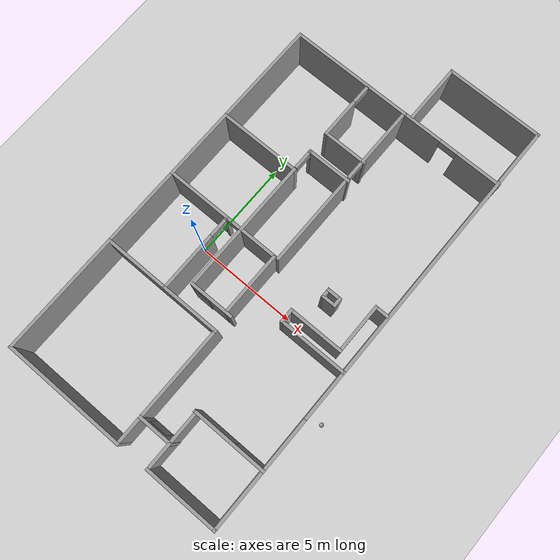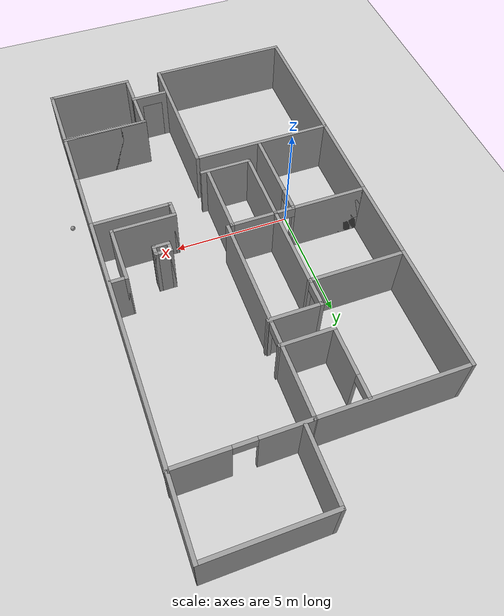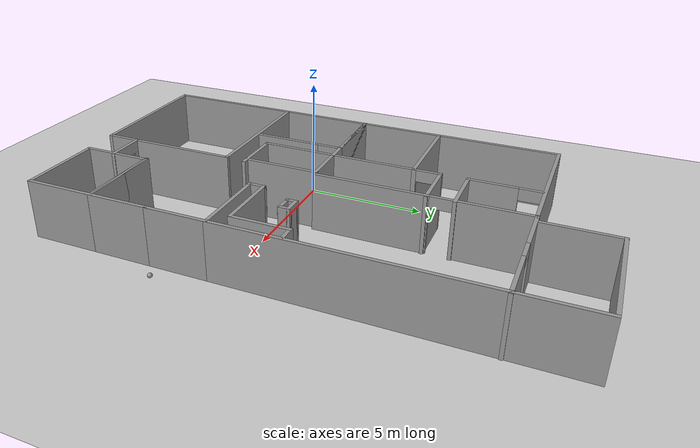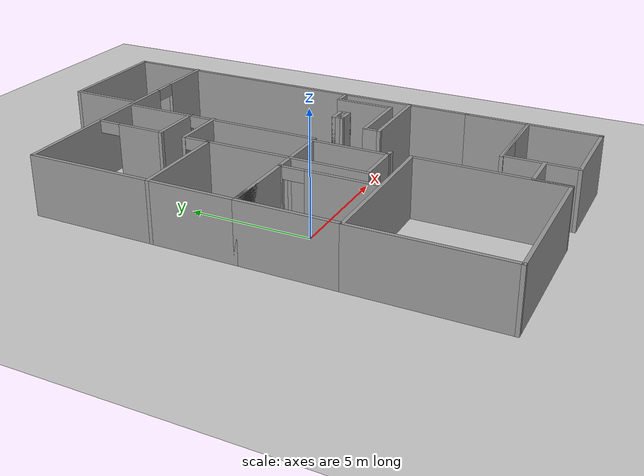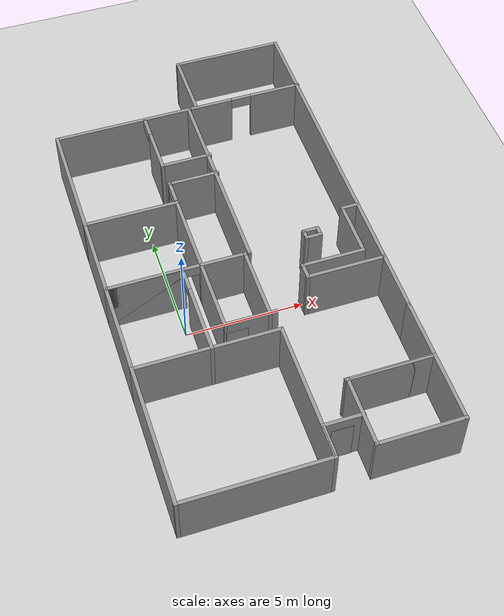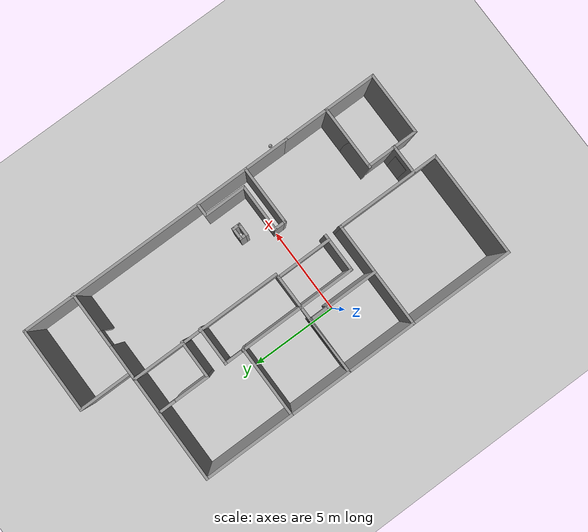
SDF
<sdf version="1.6">
 <world name="default">
  <model name="ground_plane">
   <static>1</static>
   <link name="link">
    <collision name="collision">
     <geometry><plane><normal>0 0 1</normal><size>100 100</size></plane></geometry>
     <surface>
      <contact><collide_bitmask>65535</collide_bitmask></contact>
      <friction><ode><mu>100</mu><mu2>50</mu2></ode></friction>
     </surface>
    </collision>
    <visual name="visual">
     <cast_shadows>0</cast_shadows>
     <geometry><plane><normal>0 0 1</normal><size>100 100</size></plane></geometry>
     <material>
      <script><uri>file://media/materials/scripts/gazebo.material</uri><name>Gazebo/Grey</name></script>
     </material>
    </visual>
   </link>
  </model>
  <model name="Model_House">
   <pose>2.76845 2.28145 0 0 -0 0</pose>
   <link name="Door_0">
    <collision name="Door_0_Collision">
     <geometry><box><size>0.9 0.17 2</size></box></geometry>
     <pose>0 0 1 0 -0 0</pose>
    </collision>
    <visual name="Door_0_Visual">
     <pose>0 0 1 0 -0 0</pose>
     <geometry><box><size>0.9 0.17 2</size></box></geometry>
     <material>
      <script><uri>file://media/materials/scripts/gazebo.material</uri><name>Gazebo/Grey</name></script>
     </material>
    </visual>
    <pose>1.18113 -9.39203 0 0 -0 0</pose>
   </link>
   <link name="Door_5">
    <collision name="Door_5_Collision">
     <geometry><box><size>0.9 0.17 2</size></box></geometry>
     <pose>0 0 1 0 -0 0</pose>
    </collision>
    <visual name="Door_5_Visual">
     <pose>0 0 1 0 -0 0</pose>
     <geometry><box><size>0.9 0.17 2</size></box></geometry>
     <material>
      <script><uri>file://media/materials/scripts/gazebo.material</uri><name>Gazebo/Grey</name></script>
     </material>
    </visual>
    <pose>-1.13265 -3.99754 0 0 -0 0</pose>
   </link>
   <link name="Wall_0">
    <collision name="Wall_0_Collision">
     <geometry><box><size>3.683 0.15 2.5</size></box></geometry>
     <pose>0 0 1.25 0 -0 0</pose>
    </collision>
    <visual name="Wall_0_Visual">
     <pose>0 0 1.25 0 -0 0</pose>
     <geometry><box><size>3.683 0.15 2.5</size></box></geometry>
     <material>
      <script><uri>file://media/materials/scripts/gazebo.material</uri><name>Gazebo/Grey</name></script>
      <ambient>1 1 1 1</ambient>
     </material>
     <meta><layer>0</layer></meta>
    </visual>
    <pose>3.75781 -10.694 0 0 -0 0</pose>
   </link>
   <link name="Wall_103">
    <collision name="Wall_103_Collision">
     <geometry><box><size>10.75 0.15 2.5</size></box></geometry>
     <pose>0 0 1.25 0 -0 0</pose>
    </collision>
    <visual name="Wall_103_Visual">
     <pose>0 0 1.25 0 -0 0</pose>
     <geometry><box><size>10.75 0.15 2.5</size></box></geometry>
     <material>
      <script><uri>file://media/materials/scripts/gazebo.material</uri><name>Gazebo/Grey</name></script>
      <ambient>1 1 1 1</ambient>
     </material>
     <meta><layer>0</layer></meta>
    </visual>
    <pose>5.52431 2.53801 0 0 -0 1.5708</pose>
   </link>
   <link name="Wall_115">
    <collision name="Wall_115_Collision">
     <geometry><box><size>0.75 0.15 2.5</size></box></geometry>
     <pose>0 0 1.25 0 -0 0</pose>
    </collision>
    <visual name="Wall_115_Visual">
     <pose>0 0 1.25 0 -0 0</pose>
     <geometry><box><size>0.75 0.15 2.5</size></box></geometry>
     <material>
      <script><uri>file://media/materials/scripts/gazebo.material</uri><name>Gazebo/Grey</name></script>
      <ambient>1 1 1 1</ambient>
     </material>
     <meta><layer>0</layer></meta>
    </visual>
    <pose>2.24531 -2.46199 0 0 -0 1.5708</pose>
   </link>
   <link name="Wall_116">
    <collision name="Wall_116_Collision">
     <geometry><box><size>2.75 0.15 2.5</size></box></geometry>
     <pose>0 0 1.25 0 -0 0</pose>
    </collision>
    <visual name="Wall_116_Visual">
     <pose>0 0 1.25 0 -0 0</pose>
     <geometry><box><size>2.75 0.15 2.5</size></box></geometry>
     <material>
      <script><uri>file://media/materials/scripts/gazebo.material</uri><name>Gazebo/Grey</name></script>
      <ambient>1 1 1 1</ambient>
     </material>
     <meta><layer>0</layer></meta>
    </visual>
    <pose>3.54531 -2.16199 0 0 -0 0</pose>
   </link>
   <link name="Wall_117">
    <collision name="Wall_117_Collision">
     <geometry><box><size>2.5 0.15 2.5</size></box></geometry>
     <pose>0 0 1.25 0 -0 0</pose>
    </collision>
    <visual name="Wall_117_Visual">
     <pose>0 0 1.25 0 -0 0</pose>
     <geometry><box><size>2.5 0.15 2.5</size></box></geometry>
     <material>
      <script><uri>file://media/materials/scripts/gazebo.material</uri><name>Gazebo/Grey</name></script>
      <ambient>1 1 1 1</ambient>
     </material>
     <meta><layer>0</layer></meta>
    </visual>
    <pose>4.84531 -0.986987 0 0 -0 1.5708</pose>
   </link>
   <link name="Wall_118">
    <collision name="Wall_118_Collision">
     <geometry><box><size>0.75 0.15 2.5</size></box></geometry>
     <pose>0 0 1.25 0 -0 0</pose>
    </collision>
    <visual name="Wall_118_Visual">
     <pose>0 0 1.25 0 -0 0</pose>
     <geometry><box><size>0.75 0.15 2.5</size></box></geometry>
     <material>
      <script><uri>file://media/materials/scripts/gazebo.material</uri><name>Gazebo/Grey</name></script>
      <ambient>1 1 1 1</ambient>
     </material>
     <meta><layer>0</layer></meta>
    </visual>
    <pose>5.14531 0.188013 0 0 -0 0</pose>
   </link>
   <link name="Wall_12">
    <collision name="Wall_12_Collision">
     <geometry><box><size>3.048 0.15 2.5</size></box></geometry>
     <pose>0 0 1.25 0 -0 0</pose>
    </collision>
    <visual name="Wall_12_Visual">
     <pose>0 0 1.25 0 -0 0</pose>
     <geometry><box><size>3.048 0.15 2.5</size></box></geometry>
     <material>
      <script><uri>file://media/materials/scripts/gazebo.material</uri><name>Gazebo/Grey</name></script>
      <ambient>1 1 1 1</ambient>
     </material>
     <meta><layer>0</layer></meta>
    </visual>
    <pose>5.52431 -9.24499 0 0 -0 1.5708</pose>
   </link>
   <link name="Wall_120">
    <collision name="Wall_120_Collision">
     <geometry><box><size>0.75 0.15 2.5</size></box></geometry>
     <pose>0 0 1.25 0 -0 0</pose>
    </collision>
    <visual name="Wall_120_Visual">
     <pose>0 0 1.25 0 -0 0</pose>
     <geometry><box><size>0.75 0.15 2.5</size></box></geometry>
     <material>
      <script><uri>file://media/materials/scripts/gazebo.material</uri><name>Gazebo/Grey</name></script>
      <ambient>1 1 1 1</ambient>
     </material>
     <meta><layer>0</layer></meta>
    </visual>
    <pose>3.18422 -0.509456 0 0 -0 0</pose>
   </link>
   <link name="Wall_121">
    <collision name="Wall_121_Collision">
     <geometry><box><size>0.5 0.15 2.5</size></box></geometry>
     <pose>0 0 1.25 0 -0 0</pose>
    </collision>
    <visual name="Wall_121_Visual">
     <pose>0 0 1.25 0 -0 0</pose>
     <geometry><box><size>0.5 0.15 2.5</size></box></geometry>
     <material>
      <script><uri>file://media/materials/scripts/gazebo.material</uri><name>Gazebo/Grey</name></script>
      <ambient>1 1 1 1</ambient>
     </material>
     <meta><layer>0</layer></meta>
    </visual>
    <pose>3.48422 -0.684456 0 0 0 -1.5708</pose>
   </link>
   <link name="Wall_122">
    <collision name="Wall_122_Collision">
     <geometry><box><size>0.75 0.15 2.5</size></box></geometry>
     <pose>0 0 1.25 0 -0 0</pose>
    </collision>
    <visual name="Wall_122_Visual">
     <pose>0 0 1.25 0 -0 0</pose>
     <geometry><box><size>0.75 0.15 2.5</size></box></geometry>
     <material>
      <script><uri>file://media/materials/scripts/gazebo.material</uri><name>Gazebo/Grey</name></script>
      <ambient>1 1 1 1</ambient>
     </material>
     <meta><layer>0</layer></meta>
    </visual>
    <pose>3.18422 -0.859456 0 0 -0 3.14159</pose>
   </link>
   <link name="Wall_123">
    <collision name="Wall_123_Collision">
     <geometry><box><size>0.5 0.15 2.5</size></box></geometry>
     <pose>0 0 1.25 0 -0 0</pose>
    </collision>
    <visual name="Wall_123_Visual">
     <pose>0 0 1.25 0 -0 0</pose>
     <geometry><box><size>0.5 0.15 2.5</size></box></geometry>
     <material>
      <script><uri>file://media/materials/scripts/gazebo.material</uri><name>Gazebo/Grey</name></script>
      <ambient>1 1 1 1</ambient>
     </material>
     <meta><layer>0</layer></meta>
    </visual>
    <pose>2.88422 -0.684456 0 0 -0 1.5708</pose>
   </link>
   <link name="Wall_126">
    <collision name="Wall_126_Collision">
     <geometry><box><size>4.877 0.15 2.5</size></box></geometry>
     <pose>0 0 1.25 0 -0 0</pose>
    </collision>
    <visual name="Wall_126_Visual">
     <pose>0 0 1.25 0 -0 0</pose>
     <geometry><box><size>4.877 0.15 2.5</size></box></geometry>
     <material>
      <script><uri>file://media/materials/scripts/gazebo.material</uri><name>Gazebo/Grey</name></script>
      <ambient>1 1 1 1</ambient>
     </material>
     <meta><layer>0</layer></meta>
    </visual>
    <pose>3.14687 10.7361 0 0 -0 0</pose>
   </link>
   <link name="Wall_128">
    <collision name="Wall_128_Collision">
     <geometry><box><size>3.048 0.15 2.5</size></box></geometry>
     <pose>0 0 1.25 0 -0 0</pose>
    </collision>
    <visual name="Wall_128_Visual">
     <pose>0 0 1.25 0 -0 0</pose>
     <geometry><box><size>3.048 0.15 2.5</size></box></geometry>
     <material>
      <script><uri>file://media/materials/scripts/gazebo.material</uri><name>Gazebo/Grey</name></script>
      <ambient>1 1 1 1</ambient>
     </material>
     <meta><layer>0</layer></meta>
    </visual>
    <pose>5.52431 9.28701 0 0 -0 1.5708</pose>
   </link>
   <link name="Wall_130">
    <collision name="Wall_130_Collision">
     <geometry><box><size>3 0.15 2.5</size></box></geometry>
     <pose>0 0 1.25 0 -0 0</pose>
    </collision>
    <visual name="Wall_130_Visual">
     <pose>0 0 1.25 0 -0 0</pose>
     <geometry><box><size>3 0.15 2.5</size></box></geometry>
     <material>
      <script><uri>file://media/materials/scripts/gazebo.material</uri><name>Gazebo/Grey</name></script>
      <ambient>1 1 1 1</ambient>
     </material>
     <meta><layer>0</layer></meta>
    </visual>
    <pose>0.783373 9.31114 0 0 0 -1.5708</pose>
   </link>
   <link name="Wall_14">
    <collision name="Wall_14_Collision">
     <geometry><box><size>3.048 0.15 2.5</size></box></geometry>
     <pose>0 0 1.25 0 -0 0</pose>
    </collision>
    <visual name="Wall_14_Visual">
     <pose>0 0 1.25 0 -0 0</pose>
     <geometry><box><size>3.048 0.15 2.5</size></box></geometry>
     <material>
      <script><uri>file://media/materials/scripts/gazebo.material</uri><name>Gazebo/Grey</name></script>
      <ambient>1 1 1 1</ambient>
     </material>
     <meta><layer>0</layer></meta>
    </visual>
    <pose>1.99131 -9.24499 0 0 -0 1.5708</pose>
   </link>
   <link name="Wall_16">
    <collision name="Wall_16_Collision">
     <geometry><box><size>3.683 0.15 2.5</size></box></geometry>
     <pose>0 0 1.25 0 -0 0</pose>
    </collision>
    <visual name="Wall_16_Visual">
     <pose>0 0 1.25 0 -0 0</pose>
     <geometry><box><size>3.683 0.15 2.5</size></box></geometry>
     <material>
      <script><uri>file://media/materials/scripts/gazebo.material</uri><name>Gazebo/Grey</name></script>
      <ambient>1 1 1 1</ambient>
     </material>
     <meta><layer>0</layer></meta>
    </visual>
    <pose>3.75781 -7.79599 0 0 -0 0</pose>
   </link>
   <link name="Wall_18">
    <collision name="Wall_18_Collision">
     <geometry><box><size>2.667 0.15 2.5</size></box></geometry>
     <pose>0 0 1.25 0 -0 0</pose>
    </collision>
    <visual name="Wall_18_Visual">
     <pose>0 0 1.25 0 -0 0</pose>
     <geometry><box><size>2.667 0.15 2.5</size></box></geometry>
     <material>
      <script><uri>file://media/materials/scripts/gazebo.material</uri><name>Gazebo/Grey</name></script>
      <ambient>1 1 1 1</ambient>
     </material>
     <meta><layer>0</layer></meta>
    </visual>
    <pose>5.52431 -6.53749 0 0 -0 1.5708</pose>
   </link>
   <link name="Wall_20">
    <collision name="Wall_20_Collision">
     <geometry><box><size>3.733 0.15 2.5</size></box></geometry>
     <pose>0 0 1.25 0 -0 0</pose>
    </collision>
    <visual name="Wall_20_Visual">
     <pose>0 0 1.25 0 -0 0</pose>
     <geometry><box><size>3.733 0.15 2.5</size></box></geometry>
     <material>
      <script><uri>file://media/materials/scripts/gazebo.material</uri><name>Gazebo/Grey</name></script>
      <ambient>1 1 1 1</ambient>
     </material>
     <meta><layer>0</layer></meta>
    </visual>
    <pose>3.73281 -7.79599 0 0 -0 3.14159</pose>
   </link>
   <link name="Wall_22">
    <collision name="Wall_22_Collision">
     <geometry><box><size>2.667 0.15 2.5</size></box></geometry>
     <pose>0 0 1.25 0 -0 0</pose>
    </collision>
    <visual name="Wall_22_Visual">
     <pose>0 0 1.25 0 -0 0</pose>
     <geometry><box><size>2.667 0.15 2.5</size></box></geometry>
     <material>
      <script><uri>file://media/materials/scripts/gazebo.material</uri><name>Gazebo/Grey</name></script>
      <ambient>1 1 1 1</ambient>
     </material>
     <meta><layer>0</layer></meta>
    </visual>
    <pose>5.52431 -4.02049 0 0 -0 1.5708</pose>
   </link>
   <link name="Wall_24">
    <collision name="Wall_24_Collision">
     <geometry><box><size>3.429 0.15 2.5</size></box></geometry>
     <pose>0 0 1.25 0 -0 0</pose>
    </collision>
    <visual name="Wall_24_Visual">
     <pose>0 0 1.25 0 -0 0</pose>
     <geometry><box><size>3.429 0.15 2.5</size></box></geometry>
     <material>
      <script><uri>file://media/materials/scripts/gazebo.material</uri><name>Gazebo/Grey</name></script>
      <ambient>1 1 1 1</ambient>
     </material>
     <meta><layer>0</layer></meta>
    </visual>
    <pose>3.88481 -2.76199 0 0 -0 3.14159</pose>
   </link>
   <link name="Wall_26">
    <collision name="Wall_26_Collision">
     <geometry><box><size>1.75 0.15 2.5</size></box></geometry>
     <pose>0 0 1.25 0 -0 0</pose>
    </collision>
    <visual name="Wall_26_Visual">
     <pose>0 0 1.25 0 -0 0</pose>
     <geometry><box><size>1.75 0.15 2.5</size></box></geometry>
     <material>
      <script><uri>file://media/materials/scripts/gazebo.material</uri><name>Gazebo/Grey</name></script>
      <ambient>1 1 1 1</ambient>
     </material>
     <meta><layer>0</layer></meta>
    </visual>
    <pose>1.20969 -9.38615 0 0 -0 3.14159</pose>
   </link>
   <link name="Wall_28">
    <collision name="Wall_28_Collision">
     <geometry><box><size>1.5 0.15 2.5</size></box></geometry>
     <pose>0 0 1.25 0 -0 0</pose>
    </collision>
    <visual name="Wall_28_Visual">
     <pose>0 0 1.25 0 -0 0</pose>
     <geometry><box><size>1.5 0.15 2.5</size></box></geometry>
     <material>
      <script><uri>file://media/materials/scripts/gazebo.material</uri><name>Gazebo/Grey</name></script>
      <ambient>1 1 1 1</ambient>
     </material>
     <meta><layer>0</layer></meta>
    </visual>
    <pose>0.409687 -10.0611 0 0 0 -1.5708</pose>
   </link>
   <link name="Wall_30">
    <collision name="Wall_30_Collision">
     <geometry><box><size>6.121 0.15 2.5</size></box></geometry>
     <pose>0 0 1.25 0 -0 0</pose>
    </collision>
    <visual name="Wall_30_Visual">
     <pose>0 0 1.25 0 -0 0</pose>
     <geometry><box><size>6.121 0.15 2.5</size></box></geometry>
     <material>
      <script><uri>file://media/materials/scripts/gazebo.material</uri><name>Gazebo/Grey</name></script>
      <ambient>1 1 1 1</ambient>
     </material>
     <meta><layer>0</layer></meta>
    </visual>
    <pose>-2.57581 -10.7361 0 0 -0 3.14159</pose>
   </link>
   <link name="Wall_32">
    <collision name="Wall_32_Collision">
     <geometry><box><size>6.045 0.15 2.5</size></box></geometry>
     <pose>0 0 1.25 0 -0 0</pose>
    </collision>
    <visual name="Wall_32_Visual">
     <pose>0 0 1.25 0 -0 0</pose>
     <geometry><box><size>6.045 0.15 2.5</size></box></geometry>
     <material>
      <script><uri>file://media/materials/scripts/gazebo.material</uri><name>Gazebo/Grey</name></script>
      <ambient>1 1 1 1</ambient>
     </material>
     <meta><layer>0</layer></meta>
    </visual>
    <pose>-5.56131 -7.78864 0 0 -0 1.5708</pose>
   </link>
   <link name="Wall_34">
    <collision name="Wall_34_Collision">
     <geometry><box><size>6.121 0.15 2.5</size></box></geometry>
     <pose>0 0 1.25 0 -0 0</pose>
    </collision>
    <visual name="Wall_34_Visual">
     <pose>0 0 1.25 0 -0 0</pose>
     <geometry><box><size>6.121 0.15 2.5</size></box></geometry>
     <material>
      <script><uri>file://media/materials/scripts/gazebo.material</uri><name>Gazebo/Grey</name></script>
      <ambient>1 1 1 1</ambient>
     </material>
     <meta><layer>0</layer></meta>
    </visual>
    <pose>-2.57581 -4.84115 0 0 -0 0</pose>
   </link>
   <link name="Wall_36">
    <collision name="Wall_36_Collision">
     <geometry><box><size>6.045 0.15 2.5</size></box></geometry>
     <pose>0 0 1.25 0 -0 0</pose>
    </collision>
    <visual name="Wall_36_Visual">
     <pose>0 0 1.25 0 -0 0</pose>
     <geometry><box><size>6.045 0.15 2.5</size></box></geometry>
     <material>
      <script><uri>file://media/materials/scripts/gazebo.material</uri><name>Gazebo/Grey</name></script>
      <ambient>1 1 1 1</ambient>
     </material>
     <meta><layer>0</layer></meta>
    </visual>
    <pose>0.409687 -7.78864 0 0 0 -1.5708</pose>
   </link>
   <link name="Wall_38">
    <collision name="Wall_38_Collision">
     <geometry><box><size>4.115 0.15 2.5</size></box></geometry>
     <pose>0 0 1.25 0 -0 0</pose>
    </collision>
    <visual name="Wall_38_Visual">
     <pose>0 0 1.25 0 -0 0</pose>
     <geometry><box><size>4.115 0.15 2.5</size></box></geometry>
     <material>
      <script><uri>file://media/materials/scripts/gazebo.material</uri><name>Gazebo/Grey</name></script>
      <ambient>1 1 1 1</ambient>
     </material>
     <meta><layer>0</layer></meta>
    </visual>
    <pose>-5.56131 -2.85865 0 0 -0 1.5708</pose>
   </link>
   <link name="Wall_40">
    <collision name="Wall_40_Collision">
     <geometry><box><size>3.302 0.15 2.5</size></box></geometry>
     <pose>0 0 1.25 0 -0 0</pose>
    </collision>
    <visual name="Wall_40_Visual">
     <pose>0 0 1.25 0 -0 0</pose>
     <geometry><box><size>3.302 0.15 2.5</size></box></geometry>
     <material>
      <script><uri>file://media/materials/scripts/gazebo.material</uri><name>Gazebo/Grey</name></script>
      <ambient>1 1 1 1</ambient>
     </material>
     <meta><layer>0</layer></meta>
    </visual>
    <pose>-3.98531 -0.876145 0 0 -0 0</pose>
   </link>
   <link name="Wall_42">
    <pose>-2.40931 -2.85865 0 0 0 -1.5708</pose>
    <visual name="Wall_42_Visual_0">
     <pose>-1.95969 0 1.25 0 -0 0</pose>
     <geometry><box><size>0.195618 0.15 2.5</size></box></geometry>
     <material>
      <script><uri>file://media/materials/scripts/gazebo.material</uri><name>Gazebo/Grey</name></script>
      <ambient>1 1 1 1</ambient>
     </material>
     <meta><layer>0</layer></meta>
    </visual>
    <collision name="Wall_42_Collision_0">
     <geometry><box><size>0.195618 0.15 2.5</size></box></geometry>
     <pose>-1.95969 0 1.25 0 -0 0</pose>
    </collision>
    <visual name="Wall_42_Visual_1">
     <pose>0.547809 0 1.25 0 -0 0</pose>
     <geometry><box><size>3.01938 0.15 2.5</size></box></geometry>
     <material>
      <script><uri>file://media/materials/scripts/gazebo.material</uri><name>Gazebo/Grey</name></script>
      <ambient>1 1 1 1</ambient>
     </material>
     <meta><layer>0</layer></meta>
    </visual>
    <collision name="Wall_42_Collision_1">
     <geometry><box><size>3.01938 0.15 2.5</size></box></geometry>
     <pose>0.547809 0 1.25 0 -0 0</pose>
    </collision>
    <visual name="Wall_42_Visual_2">
     <pose>-1.41188 0 2.25 0 -0 0</pose>
     <geometry><box><size>0.9 0.15 0.5</size></box></geometry>
     <material>
      <script><uri>file://media/materials/scripts/gazebo.material</uri><name>Gazebo/Grey</name></script>
      <ambient>1 1 1 1</ambient>
     </material>
     <meta><layer>0</layer></meta>
    </visual>
    <collision name="Wall_42_Collision_2">
     <geometry><box><size>0.9 0.15 0.5</size></box></geometry>
     <pose>-1.41188 0 2.25 0 -0 0</pose>
    </collision>
   </link>
   <link name="Wall_44">
    <pose>-3.59181 -0.876145 0 0 -0 0</pose>
    <visual name="Wall_44_Visual_0">
     <pose>-0.45674 0 1.25 0 -0 0</pose>
     <geometry><box><size>3.17552 0.15 2.5</size></box></geometry>
     <material>
      <script><uri>file://media/materials/scripts/gazebo.material</uri><name>Gazebo/Grey</name></script>
      <ambient>1 1 1 1</ambient>
     </material>
     <meta><layer>0</layer></meta>
    </visual>
    <collision name="Wall_44_Collision_0">
     <geometry><box><size>3.17552 0.15 2.5</size></box></geometry>
     <pose>-0.45674 0 1.25 0 -0 0</pose>
    </collision>
    <visual name="Wall_44_Visual_1">
     <pose>2.03776 0 1.25 0 -0 0</pose>
     <geometry><box><size>0.013479 0.15 2.5</size></box></geometry>
     <material>
      <script><uri>file://media/materials/scripts/gazebo.material</uri><name>Gazebo/Grey</name></script>
      <ambient>1 1 1 1</ambient>
     </material>
     <meta><layer>0</layer></meta>
    </visual>
    <collision name="Wall_44_Collision_1">
     <geometry><box><size>0.013479 0.15 2.5</size></box></geometry>
     <pose>2.03776 0 1.25 0 -0 0</pose>
    </collision>
    <visual name="Wall_44_Visual_2">
     <pose>1.58102 0 2.25 0 -0 0</pose>
     <geometry><box><size>0.9 0.15 0.5</size></box></geometry>
     <material>
      <script><uri>file://media/materials/scripts/gazebo.material</uri><name>Gazebo/Grey</name></script>
      <ambient>1 1 1 1</ambient>
     </material>
     <meta><layer>0</layer></meta>
    </visual>
    <collision name="Wall_44_Collision_2">
     <geometry><box><size>0.9 0.15 0.5</size></box></geometry>
     <pose>1.58102 0 2.25 0 -0 0</pose>
    </collision>
   </link>
   <link name="Wall_48">
    <collision name="Wall_48_Collision">
     <geometry><box><size>3.658 0.15 2.5</size></box></geometry>
     <pose>0 0 1.25 0 -0 0</pose>
    </collision>
    <visual name="Wall_48_Visual">
     <pose>0 0 1.25 0 -0 0</pose>
     <geometry><box><size>3.658 0.15 2.5</size></box></geometry>
     <material>
      <script><uri>file://media/materials/scripts/gazebo.material</uri><name>Gazebo/Grey</name></script>
      <ambient>1 1 1 1</ambient>
     </material>
     <meta><layer>0</layer></meta>
    </visual>
    <pose>-1.62231 0.877855 0 0 -0 1.5708</pose>
   </link>
   <link name="Wall_50">
    <collision name="Wall_50_Collision">
     <geometry><box><size>4.089 0.15 2.5</size></box></geometry>
     <pose>0 0 1.25 0 -0 0</pose>
    </collision>
    <visual name="Wall_50_Visual">
     <pose>0 0 1.25 0 -0 0</pose>
     <geometry><box><size>4.089 0.15 2.5</size></box></geometry>
     <material>
      <script><uri>file://media/materials/scripts/gazebo.material</uri><name>Gazebo/Grey</name></script>
      <ambient>1 1 1 1</ambient>
     </material>
     <meta><layer>0</layer></meta>
    </visual>
    <pose>-3.59181 2.63185 0 0 -0 3.14159</pose>
   </link>
   <link name="Wall_52">
    <collision name="Wall_52_Collision">
     <geometry><box><size>3.658 0.15 2.5</size></box></geometry>
     <pose>0 0 1.25 0 -0 0</pose>
    </collision>
    <visual name="Wall_52_Visual">
     <pose>0 0 1.25 0 -0 0</pose>
     <geometry><box><size>3.658 0.15 2.5</size></box></geometry>
     <material>
      <script><uri>file://media/materials/scripts/gazebo.material</uri><name>Gazebo/Grey</name></script>
      <ambient>1 1 1 1</ambient>
     </material>
     <meta><layer>0</layer></meta>
    </visual>
    <pose>-5.56131 0.877855 0 0 0 -1.5708</pose>
   </link>
   <link name="Wall_54">
    <collision name="Wall_54_Collision">
     <geometry><box><size>5.283 0.15 2.5</size></box></geometry>
     <pose>0 0 1.25 0 -0 0</pose>
    </collision>
    <visual name="Wall_54_Visual">
     <pose>0 0 1.25 0 -0 0</pose>
     <geometry><box><size>5.283 0.15 2.5</size></box></geometry>
     <material>
      <script><uri>file://media/materials/scripts/gazebo.material</uri><name>Gazebo/Grey</name></script>
      <ambient>1 1 1 1</ambient>
     </material>
     <meta><layer>0</layer></meta>
    </visual>
    <pose>-5.56131 5.19836 0 0 -0 1.5708</pose>
   </link>
   <link name="Wall_56">
    <collision name="Wall_56_Collision">
     <geometry><box><size>6.125 0.15 2.5</size></box></geometry>
     <pose>0 0 1.25 0 -0 0</pose>
    </collision>
    <visual name="Wall_56_Visual">
     <pose>0 0 1.25 0 -0 0</pose>
     <geometry><box><size>6.125 0.15 2.5</size></box></geometry>
     <material>
      <script><uri>file://media/materials/scripts/gazebo.material</uri><name>Gazebo/Grey</name></script>
      <ambient>1 1 1 1</ambient>
     </material>
     <meta><layer>0</layer></meta>
    </visual>
    <pose>-2.57381 7.76485 0 0 -0 0</pose>
   </link>
   <link name="Wall_62">
    <pose>-1.62231 3.18186 0 0 -0 1.5708</pose>
    <visual name="Wall_62_Visual_0">
     <pose>-0.531106 0 1.25 0 -0 0</pose>
     <geometry><box><size>0.187788 0.15 2.5</size></box></geometry>
     <material>
      <script><uri>file://media/materials/scripts/gazebo.material</uri><name>Gazebo/Grey</name></script>
      <ambient>1 1 1 1</ambient>
     </material>
     <meta><layer>0</layer></meta>
    </visual>
    <collision name="Wall_62_Collision_0">
     <geometry><box><size>0.187788 0.15 2.5</size></box></geometry>
     <pose>-0.531106 0 1.25 0 -0 0</pose>
    </collision>
    <visual name="Wall_62_Visual_1">
     <pose>0.543894 0 1.25 0 -0 0</pose>
     <geometry><box><size>0.162212 0.15 2.5</size></box></geometry>
     <material>
      <script><uri>file://media/materials/scripts/gazebo.material</uri><name>Gazebo/Grey</name></script>
      <ambient>1 1 1 1</ambient>
     </material>
     <meta><layer>0</layer></meta>
    </visual>
    <collision name="Wall_62_Collision_1">
     <geometry><box><size>0.162212 0.15 2.5</size></box></geometry>
     <pose>0.543894 0 1.25 0 -0 0</pose>
    </collision>
    <visual name="Wall_62_Visual_2">
     <pose>0.012788 0 2.25 0 -0 0</pose>
     <geometry><box><size>0.9 0.15 0.5</size></box></geometry>
     <material>
      <script><uri>file://media/materials/scripts/gazebo.material</uri><name>Gazebo/Grey</name></script>
      <ambient>1 1 1 1</ambient>
     </material>
     <meta><layer>0</layer></meta>
    </visual>
    <collision name="Wall_62_Collision_2">
     <geometry><box><size>0.9 0.15 0.5</size></box></geometry>
     <pose>0.012788 0 2.25 0 -0 0</pose>
    </collision>
   </link>
   <link name="Wall_64">
    <collision name="Wall_64_Collision">
     <geometry><box><size>2.25 0.15 2.5</size></box></geometry>
     <pose>0 0 1.25 0 -0 0</pose>
    </collision>
    <visual name="Wall_64_Visual">
     <pose>0 0 1.25 0 -0 0</pose>
     <geometry><box><size>2.25 0.15 2.5</size></box></geometry>
     <material>
      <script><uri>file://media/materials/scripts/gazebo.material</uri><name>Gazebo/Grey</name></script>
      <ambient>1 1 1 1</ambient>
     </material>
     <meta><layer>0</layer></meta>
    </visual>
    <pose>-0.572313 3.73185 0 0 -0 0</pose>
   </link>
   <link name="Wall_68">
    <collision name="Wall_68_Collision">
     <geometry><box><size>2.25 0.15 2.5</size></box></geometry>
     <pose>0 0 1.25 0 -0 0</pose>
    </collision>
    <visual name="Wall_68_Visual">
     <pose>0 0 1.25 0 -0 0</pose>
     <geometry><box><size>2.25 0.15 2.5</size></box></geometry>
     <material>
      <script><uri>file://media/materials/scripts/gazebo.material</uri><name>Gazebo/Grey</name></script>
      <ambient>1 1 1 1</ambient>
     </material>
     <meta><layer>0</layer></meta>
    </visual>
    <pose>-0.572313 4.83186 0 0 -0 0</pose>
   </link>
   <link name="Wall_70">
    <collision name="Wall_70_Collision">
     <geometry><box><size>3.25 0.15 2.5</size></box></geometry>
     <pose>0 0 1.25 0 -0 0</pose>
    </collision>
    <visual name="Wall_70_Visual">
     <pose>0 0 1.25 0 -0 0</pose>
     <geometry><box><size>3.25 0.15 2.5</size></box></geometry>
     <material>
      <script><uri>file://media/materials/scripts/gazebo.material</uri><name>Gazebo/Grey</name></script>
      <ambient>1 1 1 1</ambient>
     </material>
     <meta><layer>0</layer></meta>
    </visual>
    <pose>-1.62231 -2.42614 0 0 0 -1.5708</pose>
   </link>
   <link name="Wall_73">
    <collision name="Wall_73_Collision">
     <geometry><box><size>0.15 0.15 2.5</size></box></geometry>
     <pose>0 0 1.25 0 -0 0</pose>
    </collision>
    <visual name="Wall_73_Visual">
     <pose>0 0 1.25 0 -0 0</pose>
     <geometry><box><size>0.15 0.15 2.5</size></box></geometry>
     <material>
      <script><uri>file://media/materials/scripts/gazebo.material</uri><name>Gazebo/Grey</name></script>
      <ambient>1 1 1 1</ambient>
     </material>
     <meta><layer>0</layer></meta>
    </visual>
    <pose>0.461314 7.77224 0 0 -0 0</pose>
   </link>
   <link name="Wall_77">
    <pose>-1.62231 6.25685 0 0 -0 1.5708</pose>
    <visual name="Wall_77_Visual_0">
     <pose>-0.4829 0 1.25 0 -0 0</pose>
     <geometry><box><size>2.0342 0.15 2.5</size></box></geometry>
     <material>
      <script><uri>file://media/materials/scripts/gazebo.material</uri><name>Gazebo/Grey</name></script>
      <ambient>1 1 1 1</ambient>
     </material>
     <meta><layer>0</layer></meta>
    </visual>
    <collision name="Wall_77_Collision_0">
     <geometry><box><size>2.0342 0.15 2.5</size></box></geometry>
     <pose>-0.4829 0 1.25 0 -0 0</pose>
    </collision>
    <visual name="Wall_77_Visual_1">
     <pose>1.4671 0 1.25 0 -0 0</pose>
     <geometry><box><size>0.0658 0.15 2.5</size></box></geometry>
     <material>
      <script><uri>file://media/materials/scripts/gazebo.material</uri><name>Gazebo/Grey</name></script>
      <ambient>1 1 1 1</ambient>
     </material>
     <meta><layer>0</layer></meta>
    </visual>
    <collision name="Wall_77_Collision_1">
     <geometry><box><size>0.0658 0.15 2.5</size></box></geometry>
     <pose>1.4671 0 1.25 0 -0 0</pose>
    </collision>
    <visual name="Wall_77_Visual_2">
     <pose>0.9842 0 2.25 0 -0 0</pose>
     <geometry><box><size>0.9 0.15 0.5</size></box></geometry>
     <material>
      <script><uri>file://media/materials/scripts/gazebo.material</uri><name>Gazebo/Grey</name></script>
      <ambient>1 1 1 1</ambient>
     </material>
     <meta><layer>0</layer></meta>
    </visual>
    <collision name="Wall_77_Collision_2">
     <geometry><box><size>0.9 0.15 0.5</size></box></geometry>
     <pose>0.9842 0 2.25 0 -0 0</pose>
    </collision>
   </link>
   <link name="Wall_83">
    <pose>0.413687 3.46486 0 0 0 -1.5708</pose>
    <visual name="Wall_83_Visual_0">
     <pose>-2.83301 0 1.25 0 -0 0</pose>
     <geometry><box><size>3.08399 0.15 2.5</size></box></geometry>
     <material>
      <script><uri>file://media/materials/scripts/gazebo.material</uri><name>Gazebo/Grey</name></script>
      <ambient>1 1 1 1</ambient>
     </material>
     <meta><layer>0</layer></meta>
    </visual>
    <collision name="Wall_83_Collision_0">
     <geometry><box><size>3.08399 0.15 2.5</size></box></geometry>
     <pose>-2.83301 0 1.25 0 -0 0</pose>
    </collision>
    <visual name="Wall_83_Visual_1">
     <pose>1.99199 0 1.25 0 -0 0</pose>
     <geometry><box><size>4.76601 0.15 2.5</size></box></geometry>
     <material>
      <script><uri>file://media/materials/scripts/gazebo.material</uri><name>Gazebo/Grey</name></script>
      <ambient>1 1 1 1</ambient>
     </material>
     <meta><layer>0</layer></meta>
    </visual>
    <collision name="Wall_83_Collision_1">
     <geometry><box><size>4.76601 0.15 2.5</size></box></geometry>
     <pose>1.99199 0 1.25 0 -0 0</pose>
    </collision>
    <visual name="Wall_83_Visual_2">
     <pose>-0.841012 0 2.25 0 -0 0</pose>
     <geometry><box><size>0.9 0.15 0.5</size></box></geometry>
     <material>
      <script><uri>file://media/materials/scripts/gazebo.material</uri><name>Gazebo/Grey</name></script>
      <ambient>1 1 1 1</ambient>
     </material>
     <meta><layer>0</layer></meta>
    </visual>
    <collision name="Wall_83_Collision_2">
     <geometry><box><size>0.9 0.15 0.5</size></box></geometry>
     <pose>-0.841012 0 2.25 0 -0 0</pose>
    </collision>
   </link>
   <link name="Wall_85">
    <collision name="Wall_85_Collision">
     <geometry><box><size>2.25 0.15 2.5</size></box></geometry>
     <pose>0 0 1.25 0 -0 0</pose>
    </collision>
    <visual name="Wall_85_Visual">
     <pose>0 0 1.25 0 -0 0</pose>
     <geometry><box><size>2.25 0.15 2.5</size></box></geometry>
     <material>
      <script><uri>file://media/materials/scripts/gazebo.material</uri><name>Gazebo/Grey</name></script>
      <ambient>1 1 1 1</ambient>
     </material>
     <meta><layer>0</layer></meta>
    </visual>
    <pose>-0.572313 -3.97614 0 0 -0 0</pose>
   </link>
   <link name="Wall_87">
    <collision name="Wall_87_Collision">
     <geometry><box><size>2 0.15 2.5</size></box></geometry>
     <pose>0 0 1.25 0 -0 0</pose>
    </collision>
    <visual name="Wall_87_Visual">
     <pose>0 0 1.25 0 -0 0</pose>
     <geometry><box><size>2 0.15 2.5</size></box></geometry>
     <material>
      <script><uri>file://media/materials/scripts/gazebo.material</uri><name>Gazebo/Grey</name></script>
      <ambient>1 1 1 1</ambient>
     </material>
     <meta><layer>0</layer></meta>
    </visual>
    <pose>-0.697313 -0.876145 0 0 -0 0</pose>
   </link>
   <link name="Wall_91">
    <collision name="Wall_91_Collision">
     <geometry><box><size>3.25 0.15 2.5</size></box></geometry>
     <pose>0 0 1.25 0 -0 0</pose>
    </collision>
    <visual name="Wall_91_Visual">
     <pose>0 0 1.25 0 -0 0</pose>
     <geometry><box><size>3.25 0.15 2.5</size></box></geometry>
     <material>
      <script><uri>file://media/materials/scripts/gazebo.material</uri><name>Gazebo/Grey</name></script>
      <ambient>1 1 1 1</ambient>
     </material>
     <meta><layer>0</layer></meta>
    </visual>
    <pose>0.227687 -2.42614 0 0 0 -1.5708</pose>
   </link>
   <link name="Wall_99">
    <pose>3.01131 7.77224 0 0 -0 0</pose>
    <visual name="Wall_99_Visual_0">
     <pose>-1.60851 0 1.25 0 -0 0</pose>
     <geometry><box><size>2.03297 0.15 2.5</size></box></geometry>
     <material>
      <script><uri>file://media/materials/scripts/gazebo.material</uri><name>Gazebo/Grey</name></script>
      <ambient>1 1 1 1</ambient>
     </material>
     <meta><layer>0</layer></meta>
    </visual>
    <collision name="Wall_99_Collision_0">
     <geometry><box><size>2.03297 0.15 2.5</size></box></geometry>
     <pose>-1.60851 0 1.25 0 -0 0</pose>
    </collision>
    <visual name="Wall_99_Visual_1">
     <pose>1.46649 0 1.25 0 -0 0</pose>
     <geometry><box><size>2.31703 0.15 2.5</size></box></geometry>
     <material>
      <script><uri>file://media/materials/scripts/gazebo.material</uri><name>Gazebo/Grey</name></script>
      <ambient>1 1 1 1</ambient>
     </material>
     <meta><layer>0</layer></meta>
    </visual>
    <collision name="Wall_99_Collision_1">
     <geometry><box><size>2.31703 0.15 2.5</size></box></geometry>
     <pose>1.46649 0 1.25 0 -0 0</pose>
    </collision>
    <visual name="Wall_99_Visual_2">
     <pose>-0.14203 0 2.25 0 -0 0</pose>
     <geometry><box><size>0.9 0.15 0.5</size></box></geometry>
     <material>
      <script><uri>file://media/materials/scripts/gazebo.material</uri><name>Gazebo/Grey</name></script>
      <ambient>1 1 1 1</ambient>
     </material>
     <meta><layer>0</layer></meta>
    </visual>
    <collision name="Wall_99_Collision_2">
     <geometry><box><size>0.9 0.15 0.5</size></box></geometry>
     <pose>-0.14203 0 2.25 0 -0 0</pose>
    </collision>
   </link>
   <static>1</static>
  </model>
  <model name="my_ball">
   <link name="link_1">
    <inertial>
     <mass>1</mass>
     <inertia><ixx>0.1</ixx><ixy>0</ixy><ixz>0</ixz><iyy>0.1</iyy><iyz>0</iyz><izz>0.1</izz></inertia>
    </inertial>
    <visual name="visual">
     <geometry><sphere><radius>0.1</radius></sphere></geometry>
     <material>
      <lighting>1</lighting>
      <script><uri>file://media/materials/scripts/gazebo.material</uri><name>Gazebo/Grey</name></script>
      <shader type="pixel"><normal_map>__default__</normal_map></shader>
      <ambient>1 1 1 1</ambient>
      <diffuse>1 1 1 1</diffuse>
      <specular>1 1 1 1</specular>
      <emissive>1 1 1 1</emissive>
     </material>
    </visual>
    <collision name="collision">
     <geometry><sphere><radius>0.1</radius></sphere></geometry>
     <surface>
      <friction>
       <ode><mu>1</mu><mu2>1</mu2><fdir1>0 0 0</fdir1><slip1>0</slip1><slip2>0</slip2></ode>
       <torsional>
        <coefficient>1</coefficient>
        <patch_radius>0</patch_radius>
        <surface_radius>0</surface_radius>
        <use_patch_radius>1</use_patch_radius>
        <ode><slip>0</slip></ode>
       </torsional>
      </friction>
      <bounce><restitution_coefficient>0</restitution_coefficient><threshold>1e+06</threshold></bounce>
      <contact>
       <collide_without_contact>0</collide_without_contact>
       <collide_without_contact_bitmask>1</collide_without_contact_bitmask>
       <collide_bitmask>1</collide_bitmask>
       <ode>
        <soft_cfm>0</soft_cfm>
        <soft_erp>0.2</soft_erp>
        <kp>1e+13</kp>
        <kd>1</kd>
        <max_vel>0.01</max_vel>
        <min_depth>0</min_depth>
       </ode>
       <bullet>
        <split_impulse>1</split_impulse>
        <split_impulse_penetration_threshold>-0.01</split_impulse_penetration_threshold>
        <soft_cfm>0</soft_cfm>
        <soft_erp>0.2</soft_erp>
        <kp>1e+13</kp>
        <kd>1</kd>
       </bullet>
      </contact>
     </surface>
    </collision>
   </link>
   <static>0</static>
   <pose>9.01556 -2.58148 0.1 0 -0 0</pose>
  </model>
 </world>
</sdf>
